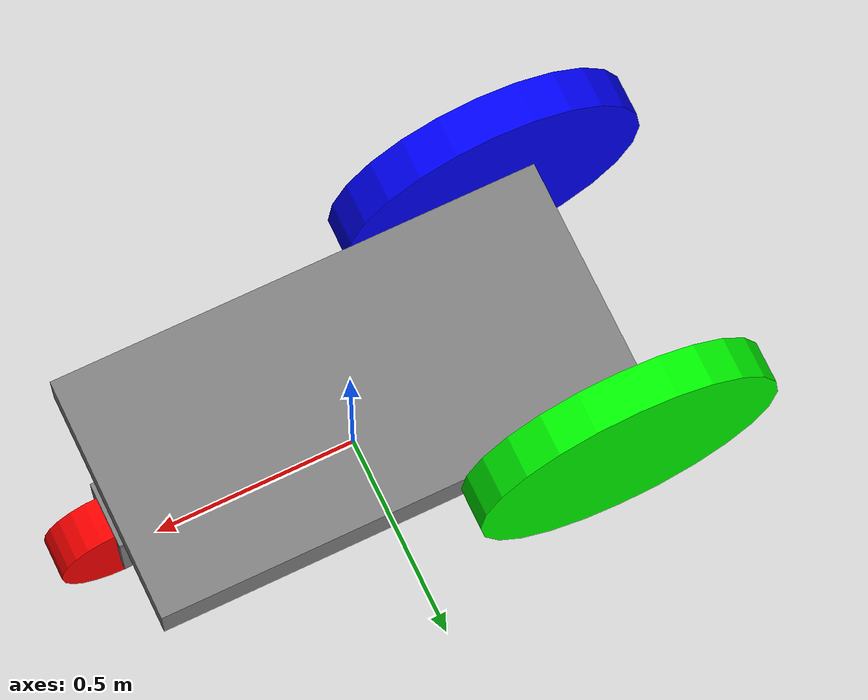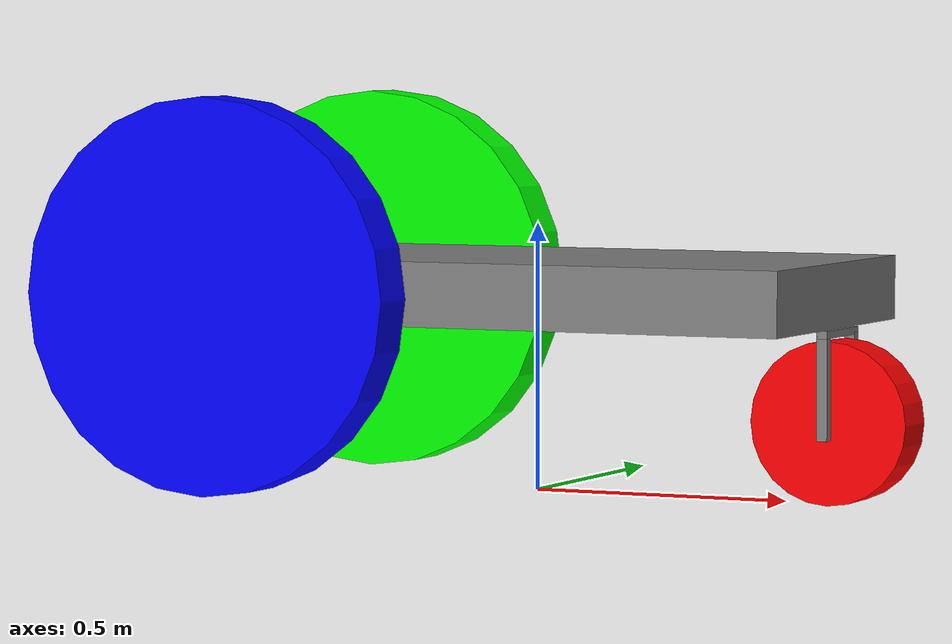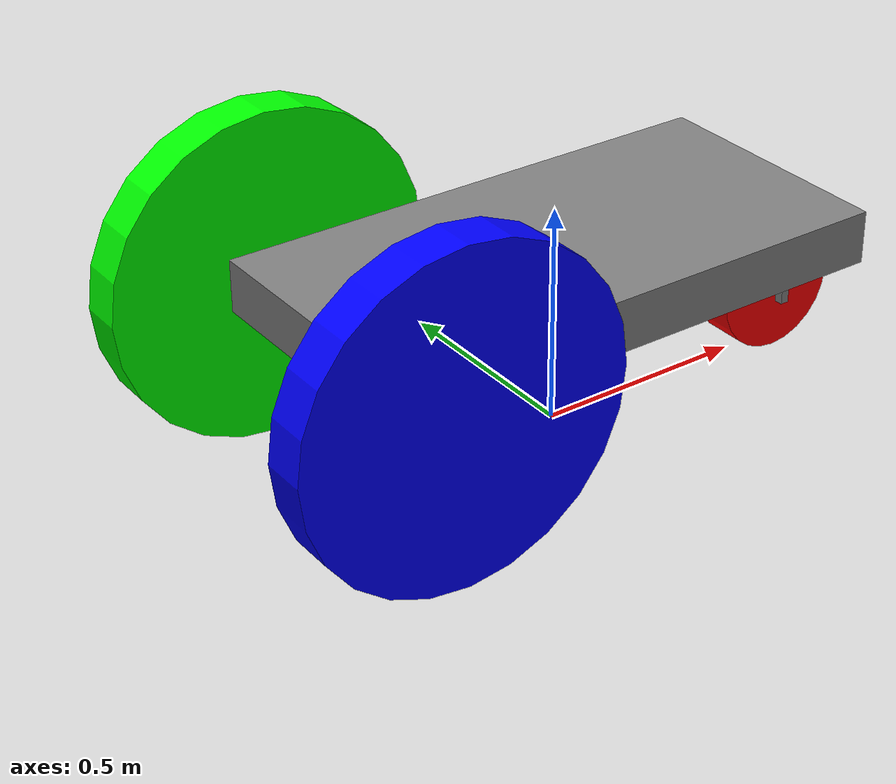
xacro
<?xml version="1.0"?>
<robot xmlns:xacro="http://ros.org/wiki/xacro" name="triciclo_test">

  <!-- Parámetros generales                    -->

  <!-- Dimensiones -->
  <xacro:property name="radio_rueda_delantera" value="0.15"/>
  <xacro:property name="radio_rueda_trasera" value="0.37"/>
  <xacro:property name="largo_rueda" value="0.1"/>
  <xacro:property name="ancho_chasis" value="0.6"/>
  <xacro:property name="largo_chasis" value="1.2"/>
  <xacro:property name="alto_chasis" value="0.12"/>
  <xacro:property name="altura_chasis" value="0.38"/>
  <xacro:property name="largo_horquilla" value="0.19"/>
  <xacro:property name="ancho_brazo_horquilla" value="0.02"/>
  <xacro:property name="alto_barra_superior" value="0.014"/>

  <!-- Colores -->
  <material name="rojo"><color rgba="1 0 0 1"/></material>
  <material name="verde"><color rgba="0 1 0 1"/></material>
  <material name="azul"><color rgba="0 0 1 1"/></material>
  <material name="gris"><color rgba="0.5 0.5 0.5 1"/></material>

  <!-- Macros reutilizables                    -->

  <!-- Macro para una rueda -->
  <xacro:macro name="rueda" params="nombre color radio">
    <link name="${nombre}">
      <visual>
        <origin xyz="0 0 0" rpy="1.5708 0 0"/>
        <geometry>
          <cylinder radius="${radio}" length="${largo_rueda}"/>
        </geometry>
        <material name="${color}"/>
      </visual>
      <collision>
        <origin xyz="0 0 0" rpy="1.5708 0 0"/>
        <geometry>
          <cylinder radius="${radio}" length="${largo_rueda}"/>
        </geometry>
      </collision>
    </link>
  </xacro:macro>

  <!-- Estructura principal del robot          -->

  <!-- Chasis principal del robot -->
  <link name="base_link">
    <visual>
      <origin xyz="0 0 ${altura_chasis}" rpy="0 0 0"/>
      <geometry>
        <box size="${largo_chasis} ${ancho_chasis} ${alto_chasis}"/>
      </geometry>
      <material name="gris"/>
    </visual>
    <collision>
      <origin xyz="0 0 ${altura_chasis}"/>
      <geometry>
        <box size="${largo_chasis} ${ancho_chasis} ${alto_chasis}"/>
      </geometry>
    </collision>
  </link>

  <!-- Horquilla delantera -->
  <link name="horquilla">
    <!-- Brazo izquierdo -->
    <visual>
      <origin xyz="0 0.07 0.115"/>
      <geometry>
        <box size="${ancho_brazo_horquilla} ${ancho_brazo_horquilla} ${largo_horquilla}"/>
      </geometry>
      <material name="gris"/>
    </visual>
    <!-- Brazo derecho -->
    <visual>
      <origin xyz="0 -0.07 0.115"/>
      <geometry>
        <box size="${ancho_brazo_horquilla} ${ancho_brazo_horquilla} ${largo_horquilla}"/>
      </geometry>
      <material name="gris"/>
    </visual>
    <!-- Barra superior -->
    <visual>
      <origin xyz="0 0 0.213"/>
      <geometry>
        <box size="${ancho_brazo_horquilla} 0.16 ${alto_barra_superior}"/>
      </geometry>
      <material name="gris"/>
    </visual>

    <!-- Colisiones -->
    <collision>
      <origin xyz="0 0.07 0.115"/>
      <geometry>
        <box size="${ancho_brazo_horquilla} ${ancho_brazo_horquilla} ${largo_horquilla}"/>
      </geometry>
    </collision>
    <collision>
      <origin xyz="0 -0.07 0.115"/>
      <geometry>
        <box size="${ancho_brazo_horquilla} ${ancho_brazo_horquilla} ${largo_horquilla}"/>
      </geometry>
    </collision>
    <collision>
      <origin xyz="0 0 0.213"/>
      <geometry>
        <box size="${ancho_brazo_horquilla} 0.16 ${alto_barra_superior}"/>
      </geometry>
    </collision>
  </link>

  <!-- Joint: chasis a horquilla -->
  <joint name="direccion" type="revolute">
    <parent link="base_link"/>
    <child link="horquilla"/>
    <origin xyz="0.6 0 0.10"/>
    <axis xyz="0 0 1"/>
    <limit lower="-1.57" upper="1.57" effort="10" velocity="1"/>
  </joint>

  <!-- Rueda delantera -->
  <xacro:rueda nombre="rueda_delantera" color="rojo" radio="${radio_rueda_delantera}"/>

  <!-- Joint: horquilla a rueda delantera -->
  <joint name="giro_rueda_delantera" type="continuous">
    <parent link="horquilla"/>
    <child link="rueda_delantera"/>
    <origin xyz="0 0 0.05"/>
    <axis xyz="0 1 0"/>
  </joint>

  <!-- Rueda trasera izquierda -->
  <xacro:rueda nombre="rueda_izquierda" color="verde" radio="${radio_rueda_trasera}"/>

  <!-- Joint: chasis a rueda trasera izquierda -->
  <joint name="propulsion_izq" type="continuous">
    <parent link="base_link"/>
    <child link="rueda_izquierda"/>
    <origin xyz="-0.5 0.35 0.37" rpy="0 0 0"/>
    <axis xyz="0 1 0"/>
  </joint>

  <!-- Rueda trasera derecha -->
  <xacro:rueda nombre="rueda_derecha" color="azul" radio="${radio_rueda_trasera}"/>

  <!-- Joint: chasis a rueda trasera derecha -->
  <joint name="propulsion_der" type="continuous">
    <parent link="base_link"/>
    <child link="rueda_derecha"/>
    <origin xyz="-0.5 -0.35 0.37" rpy="0 0 0"/>
    <axis xyz="0 1 0"/>
  </joint>

</robot>
